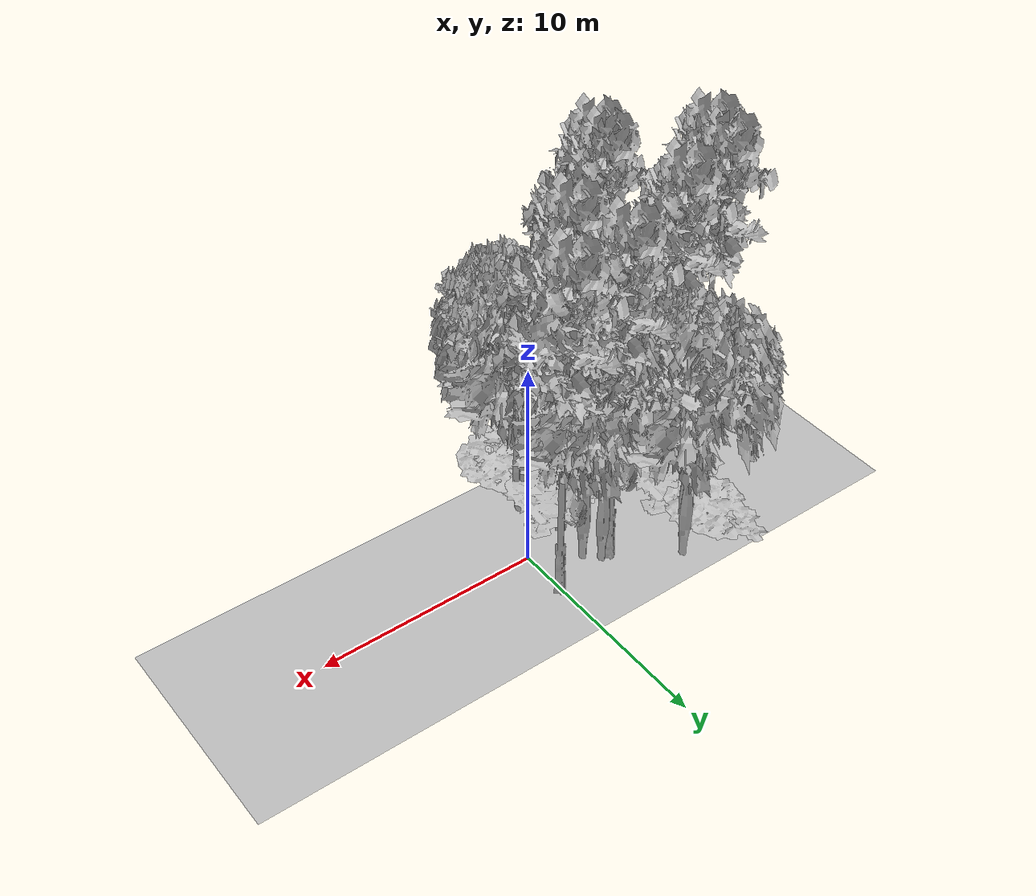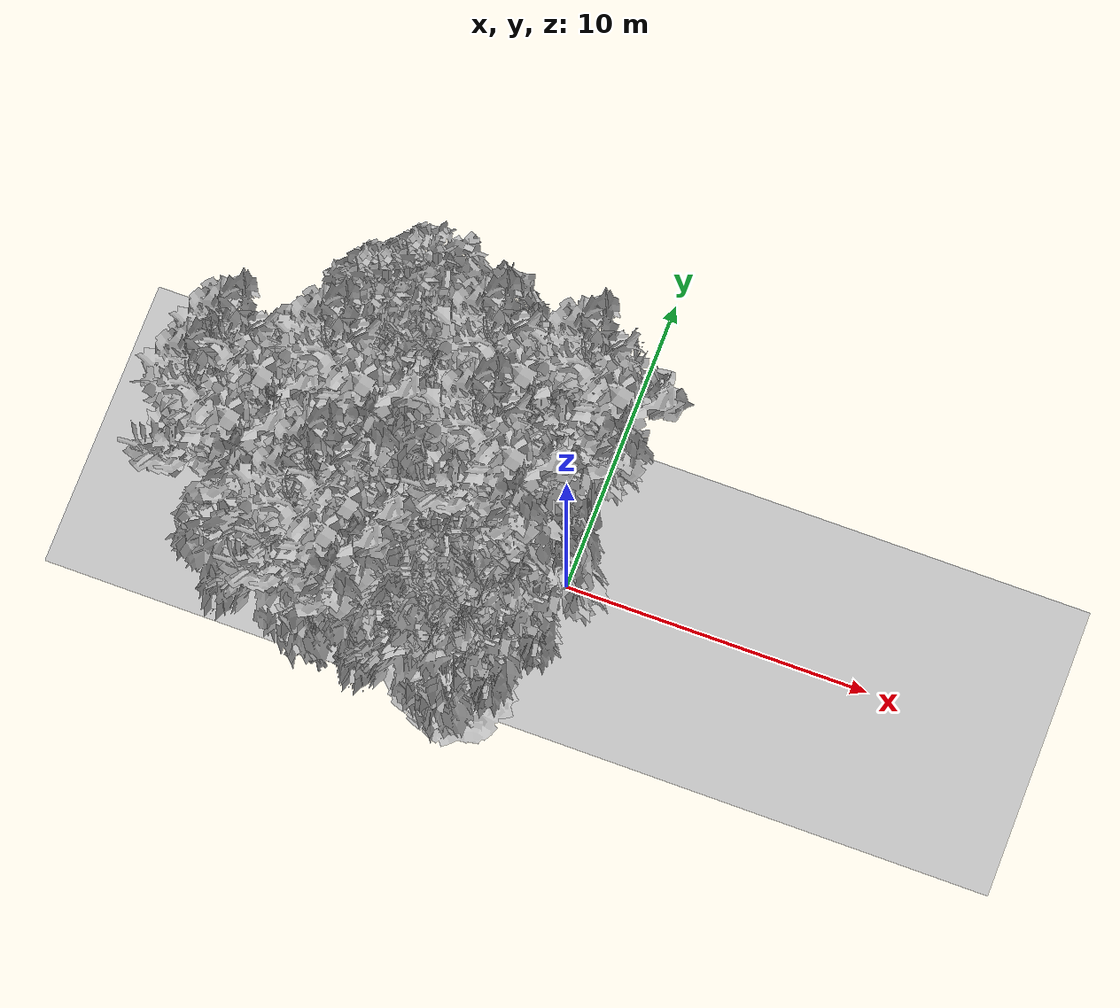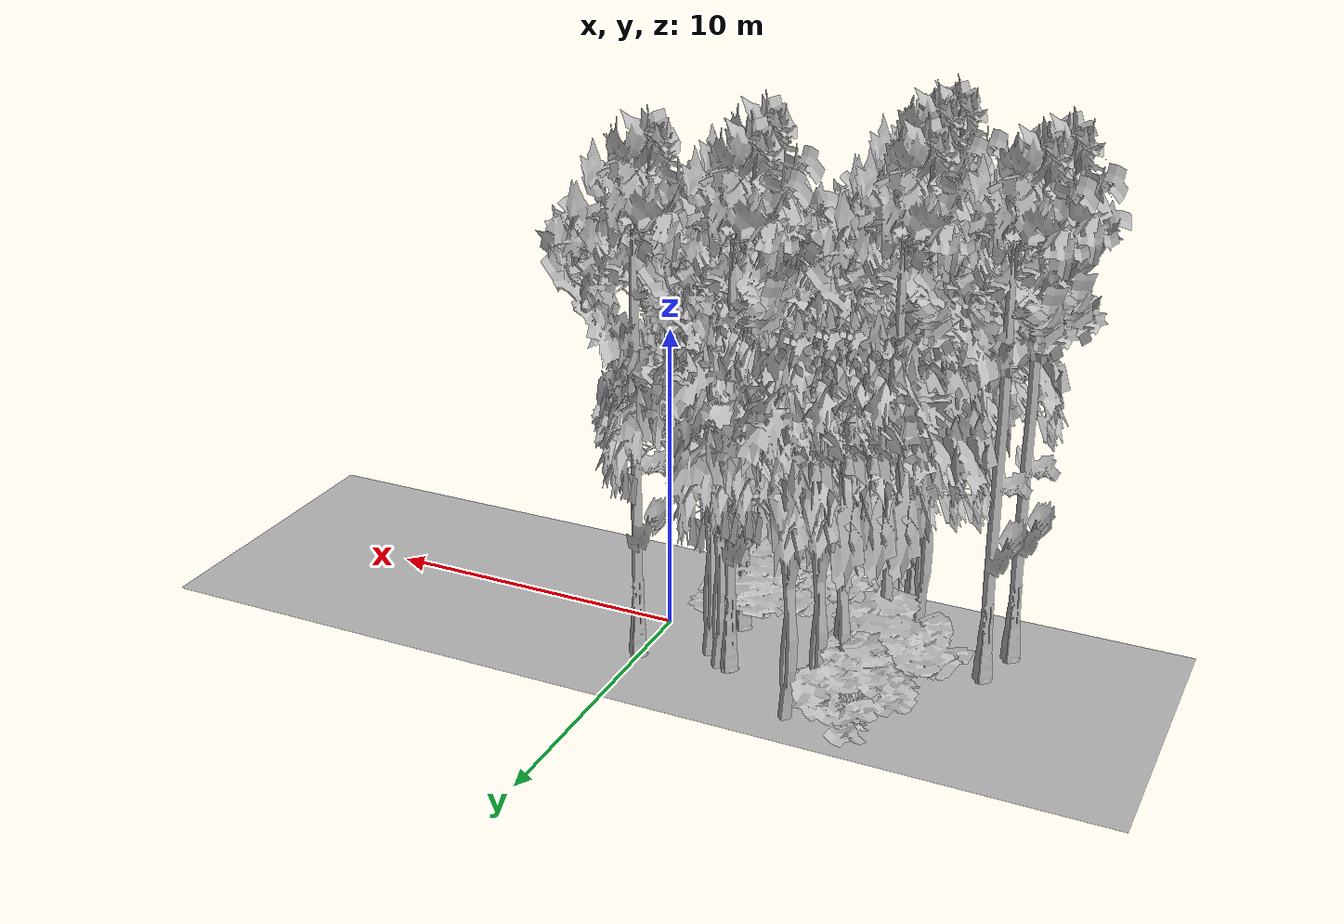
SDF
<sdf version="1.7">
 <world name="default">
  <model name="ground_plane">
   <static>1</static>
   <link name="link">
    <collision name="collision">
     <pose>-50 0 0 0 -0 0</pose>
     <geometry><plane><normal>0 0 1</normal><size>100 100</size></plane></geometry>
     <surface><contact><ode><min_depth>0.01</min_depth><max_vel>0</max_vel></ode></contact></surface>
    </collision>
    <visual name="grass">
     <cast_shadows>0</cast_shadows>
     <geometry>
      <mesh>
       <scale>0.5814285714285714 0.18142857142857144 0.1</scale>
       <uri>file://grass_plane/meshes/grass_plane.dae</uri>
      </mesh>
     </geometry>
    </visual>
   </link>
  </model>
  <model name="Tree 8">
   <static>1</static>
   <pose>-2.014990306784476 1.2075825491668652 0 1.57079 -0 0</pose>
   <link name="link">
    <collision name="collision">
     <geometry><mesh><scale>3.5 5 3.5</scale><uri>model://tree_2/meshes/tree_2.obj</uri></mesh></geometry>
    </collision>
    <visual name="visual">
     <geometry><mesh><scale>3.5 5 3.5</scale><uri>model://tree_2/meshes/tree_2.obj</uri></mesh></geometry>
    </visual>
   </link>
  </model>
  <model name="Tree 42">
   <static>1</static>
   <pose>-10.049137825262044 -0.8562107387569711 0 1.57079 -0 0</pose>
   <link name="link">
    <collision name="collision">
     <geometry><mesh><scale>3.5 5 3.5</scale><uri>model://tree_9/meshes/tree_9.obj</uri></mesh></geometry>
    </collision>
    <visual name="visual">
     <geometry><mesh><scale>3.5 5 3.5</scale><uri>model://tree_9/meshes/tree_9.obj</uri></mesh></geometry>
    </visual>
   </link>
  </model>
  <model name="Tree 80">
   <static>1</static>
   <pose>-1.5898318173452637 -2.7285815212721722 0 1.57079 -0 0</pose>
   <link name="link">
    <collision name="collision">
     <geometry><mesh><scale>3.5 5 3.5</scale><uri>model://tree_2/meshes/tree_2.obj</uri></mesh></geometry>
    </collision>
    <visual name="visual">
     <geometry><mesh><scale>3.5 5 3.5</scale><uri>model://tree_2/meshes/tree_2.obj</uri></mesh></geometry>
    </visual>
   </link>
  </model>
  <model name="Tree 83">
   <static>1</static>
   <pose>-7.507848084129762 0.17380374779119023 0 1.57079 -0 0</pose>
   <link name="link">
    <collision name="collision">
     <geometry><mesh><scale>3 2 3</scale><uri>model://tree_3/meshes/tree_3.obj</uri></mesh></geometry>
    </collision>
    <visual name="visual">
     <geometry><mesh><scale>3 2 3</scale><uri>model://tree_3/meshes/tree_3.obj</uri></mesh></geometry>
    </visual>
   </link>
  </model>
  <model name="Tree 111">
   <static>1</static>
   <pose>-2.613855860352828 -4.10225495684994 0 1.57079 -0 0</pose>
   <link name="link">
    <collision name="collision">
     <geometry><mesh><scale>4 2.5 4</scale><uri>model://tree_1/meshes/tree_1.obj</uri></mesh></geometry>
    </collision>
    <visual name="visual">
     <geometry><mesh><scale>4 2.5 4</scale><uri>model://tree_1/meshes/tree_1.obj</uri></mesh></geometry>
    </visual>
   </link>
  </model>
  <model name="Tree 112">
   <static>1</static>
   <pose>-3.7275099346781886 -2.9569028162523416 0 1.57079 -0 0</pose>
   <link name="link">
    <collision name="collision">
     <geometry><mesh><scale>3 2 3</scale><uri>model://tree_3/meshes/tree_3.obj</uri></mesh></geometry>
    </collision>
    <visual name="visual">
     <geometry><mesh><scale>3 2 3</scale><uri>model://tree_3/meshes/tree_3.obj</uri></mesh></geometry>
    </visual>
   </link>
  </model>
  <model name="Tree 115">
   <static>1</static>
   <pose>-6.552376595791763 -4.780164241088432 0 1.57079 -0 0</pose>
   <link name="link">
    <collision name="collision">
     <geometry><mesh><scale>3.5 5 3.5</scale><uri>model://tree_9/meshes/tree_9.obj</uri></mesh></geometry>
    </collision>
    <visual name="visual">
     <geometry><mesh><scale>3.5 5 3.5</scale><uri>model://tree_9/meshes/tree_9.obj</uri></mesh></geometry>
    </visual>
   </link>
  </model>
  <model name="Tree 128">
   <static>1</static>
   <pose>-10.488980837490338 -2.396572299479809 0 1.57079 -0 0</pose>
   <link name="link">
    <collision name="collision">
     <geometry><mesh><scale>3.5 5 3.5</scale><uri>model://tree_9/meshes/tree_9.obj</uri></mesh></geometry>
    </collision>
    <visual name="visual">
     <geometry><mesh><scale>3.5 5 3.5</scale><uri>model://tree_9/meshes/tree_9.obj</uri></mesh></geometry>
    </visual>
   </link>
  </model>
  <model name="Tree 142">
   <static>1</static>
   <pose>-2.626284362209745 -1.688666548641283 0 1.57079 -0 0</pose>
   <link name="link">
    <collision name="collision">
     <geometry><mesh><scale>3 2 3</scale><uri>model://tree_3/meshes/tree_3.obj</uri></mesh></geometry>
    </collision>
    <visual name="visual">
     <geometry><mesh><scale>3 2 3</scale><uri>model://tree_3/meshes/tree_3.obj</uri></mesh></geometry>
    </visual>
   </link>
  </model>
  <model name="Tree 150">
   <static>1</static>
   <pose>-7.1662798552206795 -0.04106517859333536 0 1.57079 -0 0</pose>
   <link name="link">
    <collision name="collision">
     <geometry><mesh><scale>3.5 5 3.5</scale><uri>model://tree_9/meshes/tree_9.obj</uri></mesh></geometry>
    </collision>
    <visual name="visual">
     <geometry><mesh><scale>3.5 5 3.5</scale><uri>model://tree_9/meshes/tree_9.obj</uri></mesh></geometry>
    </visual>
   </link>
  </model>
  <model name="Tree 153">
   <static>1</static>
   <pose>-2.8517002608312794 1.8394904922579514 0 1.57079 -0 0</pose>
   <link name="link">
    <collision name="collision">
     <geometry><mesh><scale>3.5 5 3.5</scale><uri>model://tree_9/meshes/tree_9.obj</uri></mesh></geometry>
    </collision>
    <visual name="visual">
     <geometry><mesh><scale>3.5 5 3.5</scale><uri>model://tree_9/meshes/tree_9.obj</uri></mesh></geometry>
    </visual>
   </link>
  </model>
  <model name="Tree 177">
   <static>1</static>
   <pose>-2.5738496160227555 -4.315281735919548 0 1.57079 -0 0</pose>
   <link name="link">
    <collision name="collision">
     <geometry><mesh><scale>3.5 5 3.5</scale><uri>model://tree_2/meshes/tree_2.obj</uri></mesh></geometry>
    </collision>
    <visual name="visual">
     <geometry><mesh><scale>3.5 5 3.5</scale><uri>model://tree_2/meshes/tree_2.obj</uri></mesh></geometry>
    </visual>
   </link>
  </model>
  <model name="Tree 221">
   <static>1</static>
   <pose>-7.218542923692624 -3.7345922684221744 0 1.57079 -0 0</pose>
   <link name="link">
    <collision name="collision">
     <geometry><mesh><scale>3.5 5 3.5</scale><uri>model://tree_2/meshes/tree_2.obj</uri></mesh></geometry>
    </collision>
    <visual name="visual">
     <geometry><mesh><scale>3.5 5 3.5</scale><uri>model://tree_2/meshes/tree_2.obj</uri></mesh></geometry>
    </visual>
   </link>
  </model>
  <model name="Tree 233">
   <static>1</static>
   <pose>0.05327914826991531 2.227834543326505 0 1.57079 -0 0</pose>
   <link name="link">
    <collision name="collision">
     <geometry><mesh><scale>3.5 5 3.5</scale><uri>model://tree_9/meshes/tree_9.obj</uri></mesh></geometry>
    </collision>
    <visual name="visual">
     <geometry><mesh><scale>3.5 5 3.5</scale><uri>model://tree_9/meshes/tree_9.obj</uri></mesh></geometry>
    </visual>
   </link>
  </model>
  <model name="Tree 240">
   <static>1</static>
   <pose>-2.570265484843965 1.7793926941522429 0 1.57079 -0 0</pose>
   <link name="link">
    <collision name="collision">
     <geometry><mesh><scale>3.5 5 3.5</scale><uri>model://tree_2/meshes/tree_2.obj</uri></mesh></geometry>
    </collision>
    <visual name="visual">
     <geometry><mesh><scale>3.5 5 3.5</scale><uri>model://tree_2/meshes/tree_2.obj</uri></mesh></geometry>
    </visual>
   </link>
  </model>
  <model name="Tree 286">
   <static>1</static>
   <pose>-6.727657114833725 2.535417263262026 0 1.57079 -0 0</pose>
   <link name="link">
    <collision name="collision">
     <geometry><mesh><scale>3.5 5 3.5</scale><uri>model://tree_2/meshes/tree_2.obj</uri></mesh></geometry>
    </collision>
    <visual name="visual">
     <geometry><mesh><scale>3.5 5 3.5</scale><uri>model://tree_2/meshes/tree_2.obj</uri></mesh></geometry>
    </visual>
   </link>
  </model>
  <model name="Tree 373">
   <static>1</static>
   <pose>-2.2360925483912126 -0.6685346556962593 0 1.57079 -0 0</pose>
   <link name="link">
    <collision name="collision">
     <geometry><mesh><scale>3.5 5 3.5</scale><uri>model://tree_9/meshes/tree_9.obj</uri></mesh></geometry>
    </collision>
    <visual name="visual">
     <geometry><mesh><scale>3.5 5 3.5</scale><uri>model://tree_9/meshes/tree_9.obj</uri></mesh></geometry>
    </visual>
   </link>
  </model>
  <model name="Tree 412">
   <static>1</static>
   <pose>-2.0175605505112912 -4.320651454159128 0 1.57079 -0 0</pose>
   <link name="link">
    <collision name="collision">
     <geometry><mesh><scale>4 2.5 4</scale><uri>model://tree_1/meshes/tree_1.obj</uri></mesh></geometry>
    </collision>
    <visual name="visual">
     <geometry><mesh><scale>4 2.5 4</scale><uri>model://tree_1/meshes/tree_1.obj</uri></mesh></geometry>
    </visual>
   </link>
  </model>
  <model name="Tree 416">
   <static>1</static>
   <pose>-6.26559348100762 -3.74713092039282 0 1.57079 -0 0</pose>
   <link name="link">
    <collision name="collision">
     <geometry><mesh><scale>3.5 5 3.5</scale><uri>model://tree_9/meshes/tree_9.obj</uri></mesh></geometry>
    </collision>
    <visual name="visual">
     <geometry><mesh><scale>3.5 5 3.5</scale><uri>model://tree_9/meshes/tree_9.obj</uri></mesh></geometry>
    </visual>
   </link>
  </model>
  <model name="Tree 417">
   <static>1</static>
   <pose>-2.482160327008046 -4.479873519485608 0 1.57079 -0 0</pose>
   <link name="link">
    <collision name="collision">
     <geometry><mesh><scale>3.5 5 3.5</scale><uri>model://tree_2/meshes/tree_2.obj</uri></mesh></geometry>
    </collision>
    <visual name="visual">
     <geometry><mesh><scale>3.5 5 3.5</scale><uri>model://tree_2/meshes/tree_2.obj</uri></mesh></geometry>
    </visual>
   </link>
  </model>
  <model name="Tree 479">
   <static>1</static>
   <pose>-5.512760084503753 3.5733545536164115 0 1.57079 -0 0</pose>
   <link name="link">
    <collision name="collision">
     <geometry><mesh><scale>3.5 5 3.5</scale><uri>model://tree_2/meshes/tree_2.obj</uri></mesh></geometry>
    </collision>
    <visual name="visual">
     <geometry><mesh><scale>3.5 5 3.5</scale><uri>model://tree_2/meshes/tree_2.obj</uri></mesh></geometry>
    </visual>
   </link>
  </model>
  <model name="Tree 481">
   <static>1</static>
   <pose>-6.144924397252986 2.831874213253858 0 1.57079 -0 0</pose>
   <link name="link">
    <collision name="collision">
     <geometry><mesh><scale>3.5 5 3.5</scale><uri>model://tree_2/meshes/tree_2.obj</uri></mesh></geometry>
    </collision>
    <visual name="visual">
     <geometry><mesh><scale>3.5 5 3.5</scale><uri>model://tree_2/meshes/tree_2.obj</uri></mesh></geometry>
    </visual>
   </link>
  </model>
  <model name="Tree 502">
   <static>1</static>
   <pose>-7.467157629607044 3.240351203091361 0 1.57079 -0 0</pose>
   <link name="link">
    <collision name="collision">
     <geometry><mesh><scale>4 2.5 4</scale><uri>model://tree_1/meshes/tree_1.obj</uri></mesh></geometry>
    </collision>
    <visual name="visual">
     <geometry><mesh><scale>4 2.5 4</scale><uri>model://tree_1/meshes/tree_1.obj</uri></mesh></geometry>
    </visual>
   </link>
  </model>
 </world>
</sdf>
